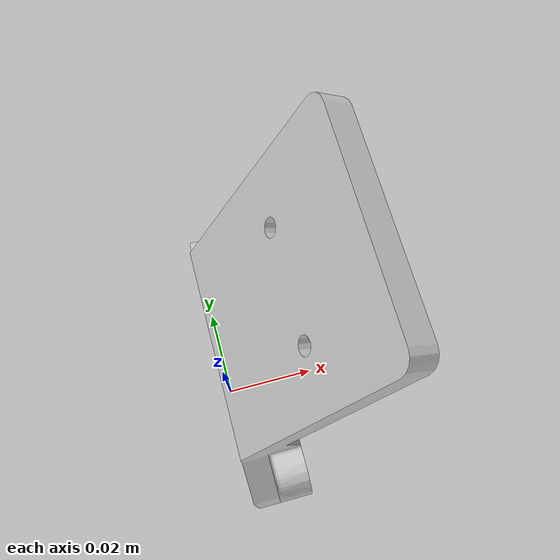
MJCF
<mujoco model="camera_support">
  <default>
    <default class="visual">
      <geom group="2" type="mesh" contype="0" conaffinity="0"/>
    </default>
    <default class="collision">
      <geom group="3" type="mesh"/>
    </default>
  </default>
  <asset>
    <material name="white_metal.001" specular="0.5" shininess="0.25" rgba="0.800000 0.800000 0.800000 1.000000"/>
    <mesh file="camera_support.obj"/>
    <mesh file="camera_support_collision_0.obj"/>
    <mesh file="camera_support_collision_1.obj"/>
  </asset>
  <worldbody>
    <body name="camera_support">
      <geom material="white_metal.001" mesh="camera_support" class="visual"/>
      <geom mesh="camera_support_collision_0" rgba="0.07608678763149679 0.3087806145758313 0.21758463620321145 1" class="collision"/>
      <geom mesh="camera_support_collision_1" rgba="0.7811979885293897 0.9706379355939684 0.6990404631613741 1" class="collision"/>
    </body>
  </worldbody>
</mujoco>
